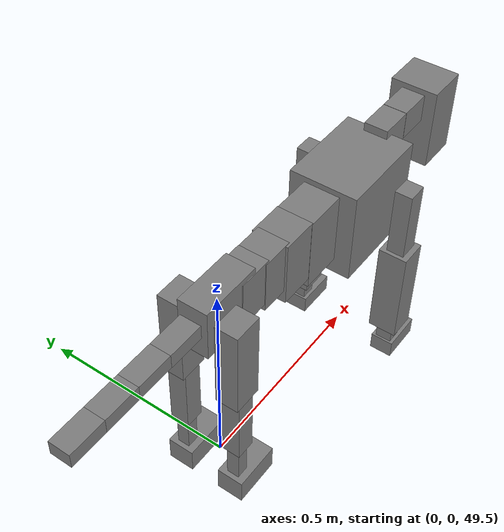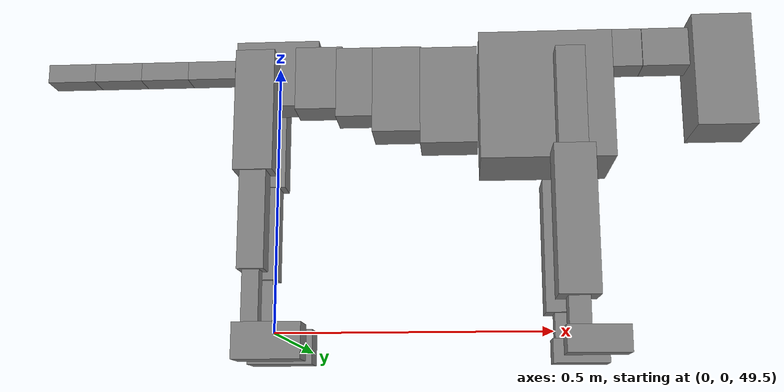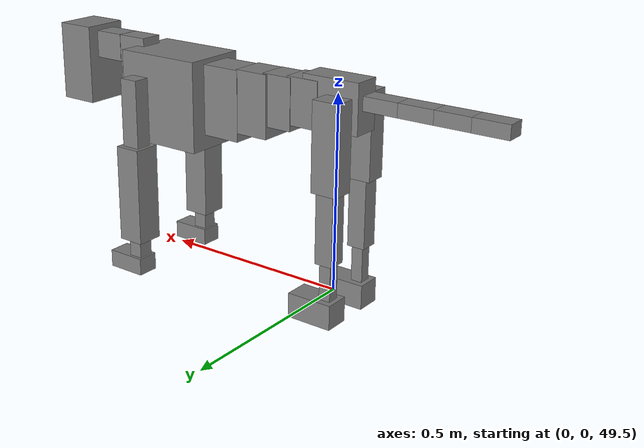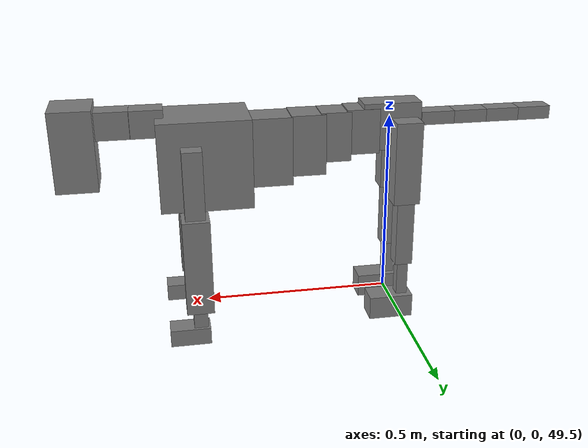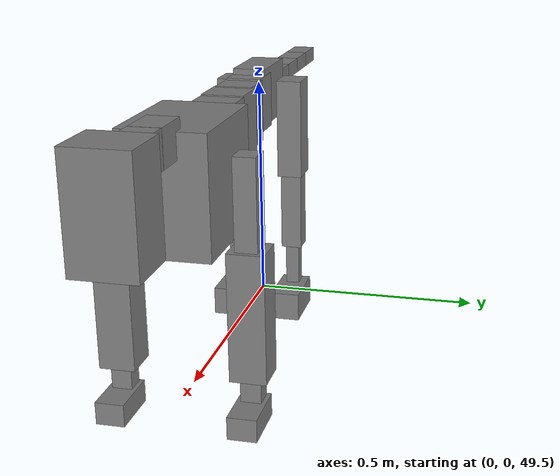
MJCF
<mujoco model="dog">

    <default>
        <joint armature="0.02" stiffness="1" damping="0.2" limited="true"/>
        <geom condim="3" friction="1 0.05 0.05" margin="0.01"/>
        <motor ctrllimited="true" ctrlrange="-1.0 1.0" forcelimited="true" gear="50"/>
    </default>

    <compiler inertiafromgeom="true" angle="radian"/>

    <option timestep="0.016" iterations="50" tolerance="1e-10" solver="Newton" jacobian="dense" cone="pyramidal"/>

    <size nconmax="20000" njmax="60000" nstack="5000000"/>
    <visual>
        <map force="0.1" zfar="30"/>
        <rgba haze="0.15 0.25 0.35 1"/>
        <quality shadowsize="2048"/>
        <global offwidth="800" offheight="800"/>
    </visual>

    <asset>
        <texture type="skybox" builtin="gradient" rgb1="0.3 0.5 0.7" rgb2="0 0 0" width="512" height="512"/>
        <texture name="texplane" type="2d" builtin="checker" rgb1=".2 .3 .4" rgb2=".1 0.15 0.2" width="512" height="512"
                 mark="cross" markrgb=".8 .8 .8"/>
        <texture name="texgeom" type="cube" builtin="flat" mark="cross" width="127" height="1278" rgb1="0.8 0.6 0.4"
                 rgb2="0.8 0.6 0.4" markrgb="1 1 1" random="0.01"/>

        <material name="matplane" reflectance="0.3" texture="texplane" texrepeat="1 1" texuniform="true"/>
        <material name="matgeom" texture="texgeom" texuniform="true" rgba="0.8 0.6 .4 1"/>
    </asset>

    <worldbody>
        <geom name="floor" pos="0 0 0" size="0 0 .25" type="plane" material="matplane" condim="3"/>

        <light directional="false" diffuse=".2 .2 .2" specular="0 0 0" pos="0 0 5" dir="0 0 -1" castshadow="false"/>
        <light mode="targetbodycom" target="torso" directional="false" diffuse=".8 .8 .8" specular="0.3 0.3 0.3"
               pos="0 0 4.0" dir="0 0 -1"/>

        <body name="root" pos="0 0 50">
            <freejoint name="root_1"/>
            <geom type="box" pos="0 0 -0.02" size="0.0774  0.0358  0.063" density="2030"/>

            <body name="spine1" pos="0.054 0 0">
                <joint name="spine1_y" axis="0 1 0" range="0 0.7" limited="true"/>
                <geom type="box" pos="0.02375 0 -0.03" size="0.04375  0.0375  0.05985" density="2030"/>

                <body name="spine2" pos="0.0612 0 0">
                    <joint name="spine2_y" axis="0 1 0" range="-0.15 0.15" limited="true"/>
                    <geom type="box" pos="0.03555  0  -0.04" size="0.04055  0.039  0.06615" density="2030"/>

                    <body name="spine3" pos="0.0730 0 0">
                        <joint name="spine3_y" axis="0 1 0" range="-0.15 0.15" limited="true"/>
                        <geom type="box" pos="0.03555  0  -0.057" size="0.04555  0.0445  0.081" density="2030"/>

                        <body name="spine4" pos="0.0780 0 0">
                            <joint name="spine4_y" axis="0 1 0" range="-0.15 0.15" limited="true"/>
                            <geom type="box" pos="0.05265  0  -0.07" size="0.05265  0.045  0.09135" density="2030"/>

                            <body name="torso" pos="0.1082 0 0">
                                <joint name="torso_y" axis="0 1 0" range="-0.15 0.15" limited="true"/>
                                <geom type="box" pos="0.11925  0  -0.085" size="0.11925  0.085  0.11745"
                                      density="2030"/>

                                <body name="neck1" pos="0.2160  0   0.0180">
                                    <joint name="neck1_y" axis="0 1 0" range="-1.2  -1" limited="true"/>
                                    <geom type="box" pos="0.0423  0  0" size="0.0423  0.03  0.036" density="2325"/>

                                    <body name="neck2" pos="0.0853  0  0">
                                        <joint name="neck2_y" axis="0 1 0" range="0.1  0" limited="true"/>
                                        <geom type="box" pos="0.0423  0  0" size="0.0423  0.03  0.036" density="2325"/>

                                        <body name="head" pos="0.0853  0  0">
                                            <joint name="head_y" axis="0 1 0" range="-0.3  -0.2" limited="true"/>
                                            <geom type="box" pos="0.0531  0  -0.055" size="0.0531  0.06  0.1044"
                                                  density="4030"/>

                                        </body>
                                    </body>
                                </body>

                                <body name="front_shoulder" pos="0.156  0   -0.0480">
                                    <joint name="front_shoulder_y" axis="0 1 0" range="-1 1.5" limited="true"/>
                                    <geom type="box" pos="0 0.13 -0.0758" size="0.0254  0.0217  0.1024" density="1158"/>
                                    <geom type="box" pos="0 -0.13 -0.0758" size="0.0254  0.0217  0.1024"
                                          density="1158"/>

                                    <body name="front_elbow" pos="0  0  -0.1515">
                                        <joint name="front_elbow_y" axis="0 1 0" range="-2 0" limited="true"/>
                                        <geom type="box" pos="0 0.13 -0.1277" size="0.0353  0.0360  0.1277"
                                              density="1081"/>
                                        <geom type="box" pos="0 -0.13 -0.1277" size="0.0353  0.0360  0.1277"
                                              density="1081"/>

                                        <body name="front_wrist" pos="0  0  -0.2553">
                                            <joint name="front_wrist_y" axis="0 1 0" range="-0.2 0" limited="true"/>
                                            <geom type="box" pos="0 0.13 -0.0316" size="0.0184  0.0204  0.0447"
                                                  density="1664"/>
                                            <geom type="box" pos="0 -0.13 -0.0316" size="0.0184  0.0204  0.0447"
                                                  density="1664"/>

                                            <body name="front_finger_end" pos="0  0  -0.0632">
                                                <joint name="front_finger_y" axis="0 1 0" range="-0.4 1"
                                                       limited="true"/>
                                                <geom type="box" pos="0.0288  0.13  -0.0079"
                                                      size="0.0527  0.0288  0.0229" density="1515"/>
                                                <geom type="box" pos="0.0288  -0.13  -0.0079"
                                                      size="0.0527  0.0288  0.0229" density="1515"/>

                                            </body>

                                        </body>
                                    </body>
                                </body>

                            </body>
                        </body>
                    </body>
                </body>
            </body>

            <body name="back_hip" pos="-0.03 0 -0.018">
                <joint name="back_hip_y" axis="0 1 0" range="-1.5 0.3" limited="true"/>
                <geom type="box" pos="0 0.07 -0.0891" size="0.0355  0.0278  0.1119" density="1154"/>
                <geom type="box" pos="0 -0.07 -0.0891" size="0.0355  0.0278  0.1119" density="1154"/>

                <body name="back_knee" pos="0  0  -0.1783">
                    <joint name="back_knee_y" axis="0 1 0" range="0 2.8" limited="true"/>
                    <geom type="box" pos="0 0.07 -0.0921" size="0.0238  0.0234  0.1077" density="1227"/>
                    <geom type="box" pos="0 -0.07 -0.0921" size="0.0238  0.0234  0.1077" density="1227"/>

                    <body name="back_ankle" pos="0  0  -0.1843">
                        <joint name="back_ankle_y" axis="0 1 0" range="-2.2 0" limited="true"/>
                        <geom type="box" pos="0 0.07 -0.0618" size="0.0153  0.0153  0.0731" density="1284"/>
                        <geom type="box" pos="0 -0.07 -0.0618" size="0.0153  0.0153  0.0731" density="1284"/>

                        <body name="back_toe_end" pos="0  0  -0.1237">
                            <joint name="back_toe_y" axis="0 1 0" range="-0.4 1" limited="true"/>
                            <geom type="box" pos="0.0328  0.07  -0.0169" size="0.0601  0.0328  0.0319" density="1515"/>
                            <geom type="box" pos="0.0328  -0.07  -0.0169" size="0.0601  0.0328  0.0319" density="1515"/>

                        </body>
                    </body>
                </body>
            </body>

            <body name="tail1" pos="-0.074 0 -0.006">
                <joint name="tail1_y" axis="0 1 0" range="-0.2 0.2" limited="true"/>
                <geom type="box" pos="-0.0536  0  0" size="0.045  0.025  0.0175" density="1587"/>

                <body name="tail2" pos="-0.09 0 0">
                    <joint name="tail2_y" axis="0 1 0" range="-0.2 0.2" limited="true"/>
                    <geom type="box" pos="-0.0536  0  0" size="0.045  0.025  0.0175" density="1587"/>

                    <body name="tail3" pos="-0.09 0 0">
                        <joint name="tail3_y" axis="0 1 0" range="-0.2 0.2" limited="true"/>
                        <geom type="box" pos="-0.0536  0  0" size="0.045  0.025  0.0175" density="1587"/>

                        <body name="tail4" pos="-0.09 0 0">
                            <joint name="tail4_y" axis="0 1 0" range="-0.2 0.2" limited="true"/>
                            <geom type="box" pos="-0.0536  0  0" size="0.045  0.025  0.0175" density="1587"/>

                        </body>
                    </body>
                </body>
            </body>
        </body>
    </worldbody>

    <actuator>
        <motor joint="spine1_y" forcerange="-150 150     "/>
        <motor joint="spine2_y" forcerange="-150 150     "/>
        <motor joint="spine3_y" forcerange="-150 150     "/>
        <motor joint="spine4_y" forcerange="-150 150     "/>
        <motor joint="torso_y" forcerange="-150 150     "/>
        <motor joint="neck1_y" forcerange="-100 100       "/>
        <motor joint="neck2_y" forcerange="-100 100       "/>
        <motor joint="head_y" forcerange="-150 150       "/>
        <motor joint="front_shoulder_y" forcerange="-112.97 131.96"/>
        <motor joint="front_elbow_y" forcerange="-179.22 182.95"/>
        <motor joint="front_wrist_y" forcerange="-76.21 87.09"/>
        <motor joint="front_finger_y" forcerange="-26.61 86.75"/>
        <motor joint="back_hip_y" forcerange="-319.19 251.79"/>
        <motor joint="back_knee_y" forcerange="-310.54 230.49"/>
        <motor joint="back_angle_y" forcerange="-76.15 68.37"/>
        <motor joint="back_toe_y" forcerange="-132.75 49.37"/>
        <motor joint="tail1_y" forcerange="-50 50     "/>
        <motor joint="tail2_y" forcerange="-50 50     "/>
        <motor joint="tail3_y" forcerange="-50 50     "/>
        <motor joint="tail4_y" forcerange="-50 50     "/>
    </actuator>
</mujoco>
